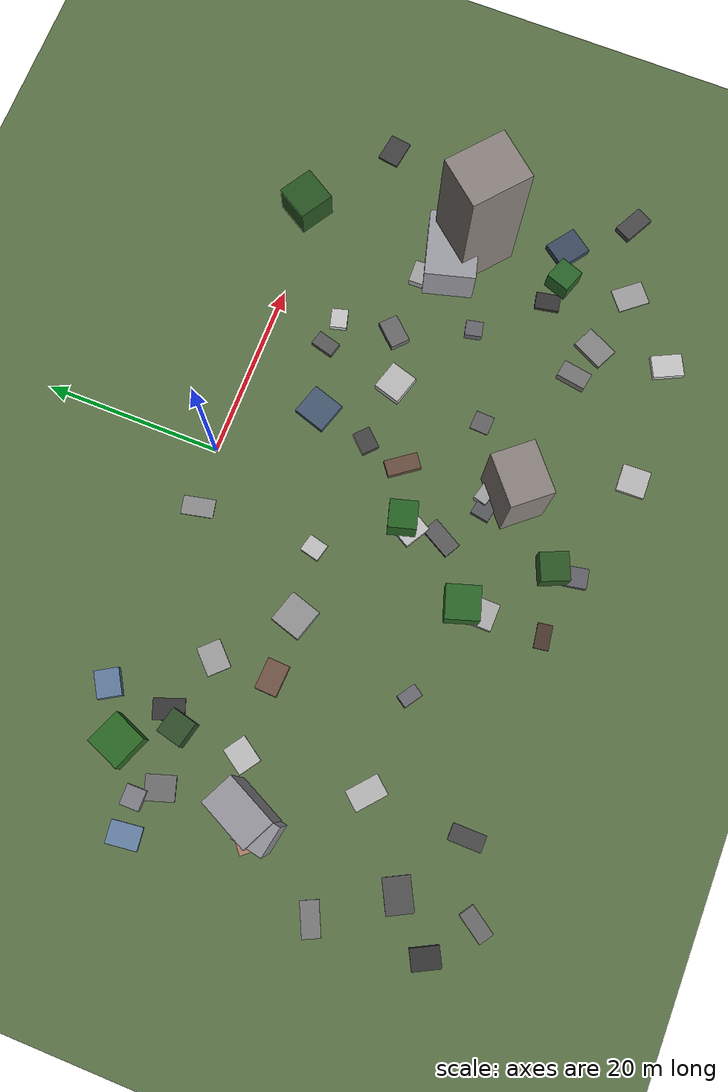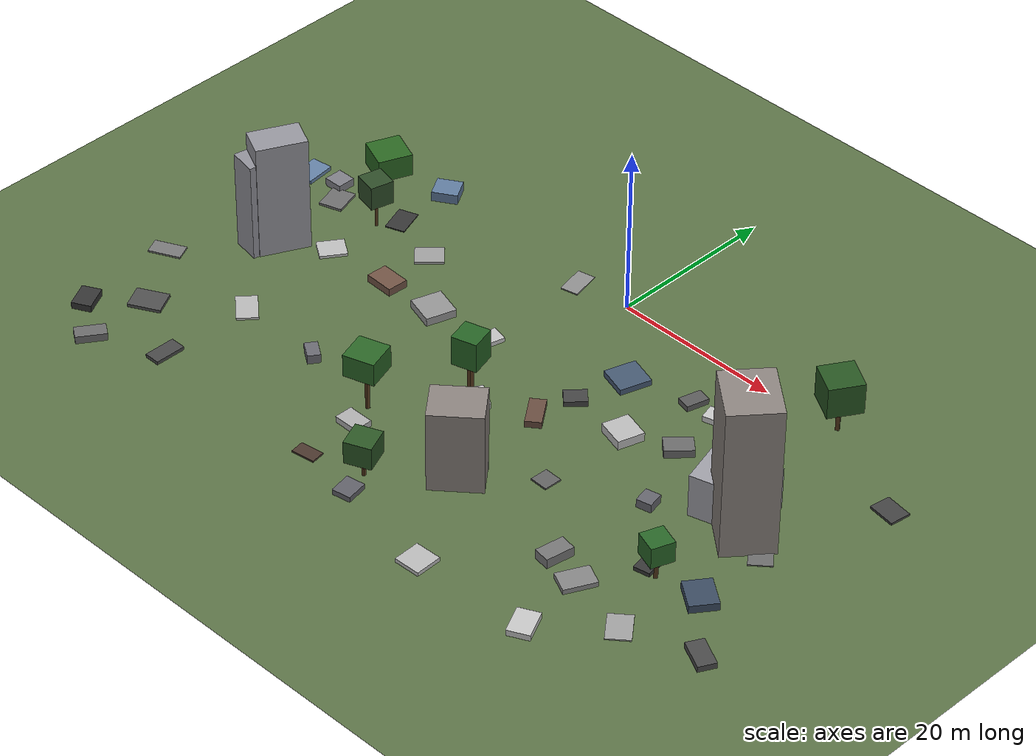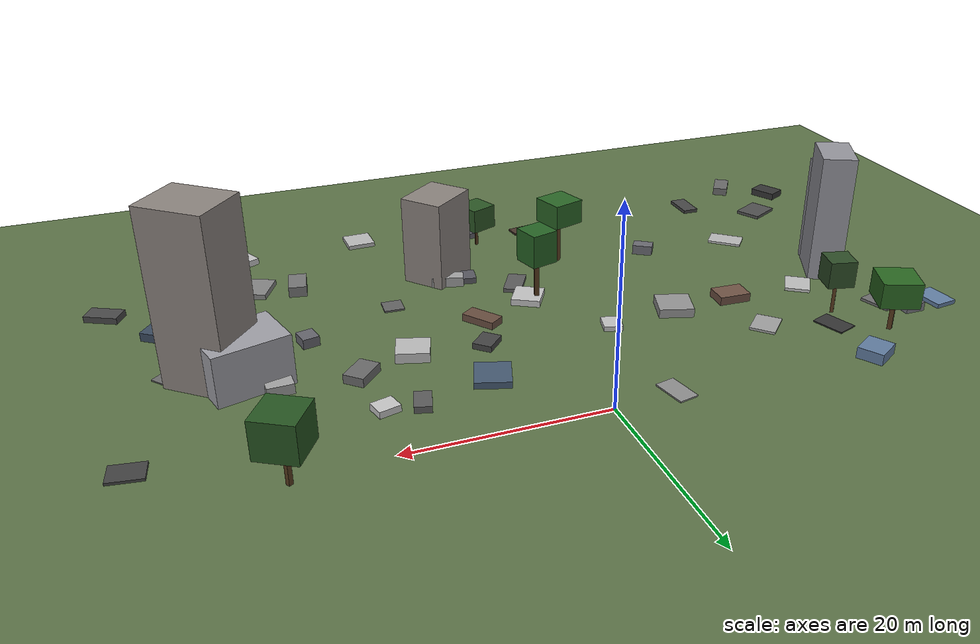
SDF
<sdf version="1.9">
 <world name="world_wind_v3_s1p5">
  <model name="ground_plane">
   <static>true</static>
   <link name="link">
    <collision name="collision">
     <geometry><plane><normal>0 0 1</normal><size>1 1</size></plane></geometry>
    </collision>
    <visual name="visual">
     <geometry><plane><normal>0 0 1</normal><size>500 500</size></plane></geometry>
     <material>
      <ambient>0.34 0.42 0.27 1</ambient>
      <diffuse>0.36 0.45 0.28 1</diffuse>
      <specular>0.05 0.06 0.04 1</specular>
     </material>
    </visual>
    <inertial>
     <mass>1</mass>
     <inertia><ixx>1</ixx><ixy>0</ixy><ixz>0</ixz><iyy>1</iyy><iyz>0</iyz><izz>1</izz></inertia>
    </inertial>
   </link>
  </model>
  <model name="tex_0">
   <static>true</static>
   <pose>-41.137 -40.159 0.403 0 0 0.478</pose>
   <link name="l">
    <visual name="v">
     <cast_shadows>false</cast_shadows>
     <geometry><box><size>2.264 3.094 0.807</size></box></geometry>
     <material>
      <ambient>0.206 0.206 0.206 1</ambient>
      <diffuse>0.206 0.206 0.206 1</diffuse>
      <specular>0.1 0.1 0.1 1</specular>
     </material>
    </visual>
   </link>
  </model>
  <model name="tex_1">
   <static>true</static>
   <pose>-41.920 -28.083 0.104 0 0 2.013</pose>
   <link name="l">
    <visual name="v">
     <cast_shadows>false</cast_shadows>
     <geometry><box><size>1.991 3.763 0.208</size></box></geometry>
     <material>
      <ambient>0.472 0.472 0.472 1</ambient>
      <diffuse>0.472 0.472 0.472 1</diffuse>
      <specular>0.1 0.1 0.1 1</specular>
     </material>
    </visual>
   </link>
  </model>
  <model name="tex_2">
   <static>true</static>
   <pose>-41.253 -7.342 0.228 0 0 0.120</pose>
   <link name="l">
    <visual name="v">
     <cast_shadows>false</cast_shadows>
     <geometry><box><size>2.489 3.451 0.456</size></box></geometry>
     <material>
      <ambient>0.395 0.508 0.649 1</ambient>
      <diffuse>0.395 0.508 0.649 1</diffuse>
      <specular>0.1 0.1 0.1 1</specular>
     </material>
    </visual>
   </link>
  </model>
  <model name="tex_7">
   <static>true</static>
   <pose>-36.256 -43.765 0.451 0 0 2.549</pose>
   <link name="l">
    <visual name="v">
     <cast_shadows>false</cast_shadows>
     <geometry><box><size>1.746 3.466 0.903</size></box></geometry>
     <material>
      <ambient>0.417 0.417 0.417 1</ambient>
      <diffuse>0.417 0.417 0.417 1</diffuse>
      <specular>0.1 0.1 0.1 1</specular>
     </material>
    </visual>
   </link>
  </model>
  <model name="tex_8">
   <static>true</static>
   <pose>-36.514 -35.487 0.184 0 0 2.053</pose>
   <link name="l">
    <visual name="v">
     <cast_shadows>false</cast_shadows>
     <geometry><box><size>2.949 3.783 0.368</size></box></geometry>
     <material>
      <ambient>0.312 0.312 0.312 1</ambient>
      <diffuse>0.312 0.312 0.312 1</diffuse>
      <specular>0.1 0.1 0.1 1</specular>
     </material>
    </visual>
   </link>
  </model>
  <model name="tex_9">
   <static>true</static>
   <pose>-36.981 -19.903 0.218 0 0 2.257</pose>
   <link name="l">
    <visual name="v">
     <cast_shadows>false</cast_shadows>
     <geometry><box><size>3.619 1.867 0.436</size></box></geometry>
     <material>
      <ambient>0.671 0.496 0.408 1</ambient>
      <diffuse>0.671 0.496 0.408 1</diffuse>
      <specular>0.1 0.1 0.1 1</specular>
     </material>
    </visual>
   </link>
  </model>
  <model name="tex_10">
   <static>true</static>
   <pose>-35.586 -8.854 0.146 0 0 1.880</pose>
   <link name="l">
    <visual name="v">
     <cast_shadows>false</cast_shadows>
     <geometry><box><size>3.256 2.732 0.292</size></box></geometry>
     <material>
      <ambient>0.431 0.431 0.431 1</ambient>
      <diffuse>0.431 0.431 0.431 1</diffuse>
      <specular>0.1 0.1 0.1 1</specular>
     </material>
    </visual>
   </link>
  </model>
  <model name="tex_15">
   <static>true</static>
   <pose>-28.677 -40.035 0.203 0 0 3.134</pose>
   <link name="l">
    <visual name="v">
     <cast_shadows>false</cast_shadows>
     <geometry><box><size>1.850 3.663 0.405</size></box></geometry>
     <material>
      <ambient>0.281 0.281 0.281 1</ambient>
      <diffuse>0.281 0.281 0.281 1</diffuse>
      <specular>0.1 0.1 0.1 1</specular>
     </material>
    </visual>
   </link>
  </model>
  <model name="tex_16">
   <static>true</static>
   <pose>-28.266 -28.858 0.131 0 0 0.863</pose>
   <link name="l">
    <visual name="v">
     <cast_shadows>false</cast_shadows>
     <geometry><box><size>2.425 3.794 0.262</size></box></geometry>
     <material>
      <ambient>0.716 0.716 0.716 1</ambient>
      <diffuse>0.716 0.716 0.716 1</diffuse>
      <specular>0.1 0.1 0.1 1</specular>
     </material>
    </visual>
   </link>
  </model>
  <model name="tex_17">
   <static>true</static>
   <pose>-29.438 -15.434 0.164 0 0 2.548</pose>
   <link name="l">
    <visual name="v">
     <cast_shadows>false</cast_shadows>
     <geometry><box><size>2.661 3.119 0.328</size></box></geometry>
     <material>
      <ambient>0.740 0.740 0.740 1</ambient>
      <diffuse>0.740 0.740 0.740 1</diffuse>
      <specular>0.1 0.1 0.1 1</specular>
     </material>
    </visual>
   </link>
  </model>
  <model name="tex_18">
   <static>true</static>
   <pose>-27.859 -6.459 0.067 0 0 1.911</pose>
   <link name="l">
    <visual name="v">
     <cast_shadows>false</cast_shadows>
     <geometry><box><size>3.435 2.317 0.134</size></box></geometry>
     <material>
      <ambient>0.209 0.209 0.209 1</ambient>
      <diffuse>0.209 0.209 0.209 1</diffuse>
      <specular>0.1 0.1 0.1 1</specular>
     </material>
    </visual>
   </link>
  </model>
  <model name="tex_19">
   <static>true</static>
   <pose>-27.711 0.384 0.590 0 0 2.111</pose>
   <link name="l">
    <visual name="v">
     <cast_shadows>false</cast_shadows>
     <geometry><box><size>2.654 2.963 1.179</size></box></geometry>
     <material>
      <ambient>0.379 0.487 0.623 1</ambient>
      <diffuse>0.379 0.487 0.623 1</diffuse>
      <specular>0.1 0.1 0.1 1</specular>
     </material>
    </visual>
   </link>
  </model>
  <model name="tex_21">
   <static>true</static>
   <pose>-20.853 -15.336 0.459 0 0 3.095</pose>
   <link name="l">
    <visual name="v">
     <cast_shadows>false</cast_shadows>
     <geometry><box><size>3.473 2.453 0.918</size></box></geometry>
     <material>
      <ambient>0.443 0.327 0.270 1</ambient>
      <diffuse>0.443 0.327 0.270 1</diffuse>
      <specular>0.1 0.1 0.1 1</specular>
     </material>
    </visual>
   </link>
  </model>
  <model name="tex_22">
   <static>true</static>
   <pose>-21.170 -8.746 0.129 0 0 2.346</pose>
   <link name="l">
    <visual name="v">
     <cast_shadows>false</cast_shadows>
     <geometry><box><size>2.642 3.262 0.258</size></box></geometry>
     <material>
      <ambient>0.623 0.623 0.623 1</ambient>
      <diffuse>0.623 0.623 0.623 1</diffuse>
      <specular>0.1 0.1 0.1 1</specular>
     </material>
    </visual>
   </link>
  </model>
  <model name="tex_24">
   <static>true</static>
   <pose>-13.934 -15.150 0.478 0 0 1.268</pose>
   <link name="l">
    <visual name="v">
     <cast_shadows>false</cast_shadows>
     <geometry><box><size>3.579 3.681 0.956</size></box></geometry>
     <material>
      <ambient>0.580 0.580 0.580 1</ambient>
      <diffuse>0.580 0.580 0.580 1</diffuse>
      <specular>0.1 0.1 0.1 1</specular>
     </material>
    </visual>
   </link>
  </model>
  <model name="tex_29">
   <static>true</static>
   <pose>-6.324 -40.404 0.102 0 0 1.721</pose>
   <link name="l">
    <visual name="v">
     <cast_shadows>false</cast_shadows>
     <geometry><box><size>1.626 2.769 0.204</size></box></geometry>
     <material>
      <ambient>0.292 0.216 0.178 1</ambient>
      <diffuse>0.292 0.216 0.178 1</diffuse>
      <specular>0.1 0.1 0.1 1</specular>
     </material>
    </visual>
   </link>
  </model>
  <model name="tex_30">
   <static>true</static>
   <pose>-6.416 -33.925 0.374 0 0 1.560</pose>
   <link name="l">
    <visual name="v">
     <cast_shadows>false</cast_shadows>
     <geometry><box><size>2.135 3.033 0.748</size></box></geometry>
     <material>
      <ambient>0.683 0.683 0.683 1</ambient>
      <diffuse>0.683 0.683 0.683 1</diffuse>
      <specular>0.1 0.1 0.1 1</specular>
     </material>
    </visual>
   </link>
  </model>
  <model name="tex_31">
   <static>true</static>
   <pose>-6.298 -14.206 0.265 0 0 1.333</pose>
   <link name="l">
    <visual name="v">
     <cast_shadows>false</cast_shadows>
     <geometry><box><size>2.227 1.981 0.530</size></box></geometry>
     <material>
      <ambient>0.757 0.757 0.757 1</ambient>
      <diffuse>0.757 0.757 0.757 1</diffuse>
      <specular>0.1 0.1 0.1 1</specular>
     </material>
    </visual>
   </link>
  </model>
  <model name="tex_32">
   <static>true</static>
   <pose>-6.615 -0.742 0.076 0 0 0.210</pose>
   <link name="l">
    <visual name="v">
     <cast_shadows>false</cast_shadows>
     <geometry><box><size>2.084 3.562 0.151</size></box></geometry>
     <material>
      <ambient>0.556 0.556 0.556 1</ambient>
      <diffuse>0.556 0.556 0.556 1</diffuse>
      <specular>0.1 0.1 0.1 1</specular>
     </material>
    </visual>
   </link>
  </model>
  <model name="tex_38">
   <static>true</static>
   <pose>-0.285 -26.573 0.219 0 0 1.063</pose>
   <link name="l">
    <visual name="v">
     <cast_shadows>false</cast_shadows>
     <geometry><box><size>3.783 1.981 0.438</size></box></geometry>
     <material>
      <ambient>0.361 0.361 0.361 1</ambient>
      <diffuse>0.361 0.361 0.361 1</diffuse>
      <specular>0.1 0.1 0.1 1</specular>
     </material>
    </visual>
   </link>
  </model>
  <model name="tex_39">
   <static>true</static>
   <pose>-0.397 -22.822 0.357 0 0 2.612</pose>
   <link name="l">
    <visual name="v">
     <cast_shadows>false</cast_shadows>
     <geometry><box><size>3.120 3.303 0.714</size></box></geometry>
     <material>
      <ambient>0.760 0.760 0.760 1</ambient>
      <diffuse>0.760 0.760 0.760 1</diffuse>
      <specular>0.1 0.1 0.1 1</specular>
     </material>
    </visual>
   </link>
  </model>
  <model name="tex_43">
   <static>true</static>
   <pose>6.593 -29.442 0.547 0 0 2.887</pose>
   <link name="l">
    <visual name="v">
     <cast_shadows>false</cast_shadows>
     <geometry><box><size>3.452 1.522 1.093</size></box></geometry>
     <material>
      <ambient>0.636 0.636 0.636 1</ambient>
      <diffuse>0.636 0.636 0.636 1</diffuse>
      <specular>0.1 0.1 0.1 1</specular>
     </material>
    </visual>
   </link>
  </model>
  <model name="tex_44">
   <static>true</static>
   <pose>5.807 -19.749 0.394 0 0 0.636</pose>
   <link name="l">
    <visual name="v">
     <cast_shadows>false</cast_shadows>
     <geometry><box><size>1.811 3.758 0.787</size></box></geometry>
     <material>
      <ambient>0.409 0.302 0.249 1</ambient>
      <diffuse>0.409 0.302 0.249 1</diffuse>
      <specular>0.1 0.1 0.1 1</specular>
     </material>
    </visual>
   </link>
  </model>
  <model name="tex_45">
   <static>true</static>
   <pose>6.906 -15.021 0.322 0 0 2.391</pose>
   <link name="l">
    <visual name="v">
     <cast_shadows>false</cast_shadows>
     <geometry><box><size>2.010 2.539 0.644</size></box></geometry>
     <material>
      <ambient>0.266 0.266 0.266 1</ambient>
      <diffuse>0.266 0.266 0.266 1</diffuse>
      <specular>0.1 0.1 0.1 1</specular>
     </material>
    </visual>
   </link>
  </model>
  <model name="tex_46">
   <static>true</static>
   <pose>8.464 -8.837 0.347 0 0 1.259</pose>
   <link name="l">
    <visual name="v">
     <cast_shadows>false</cast_shadows>
     <geometry><box><size>3.747 3.598 0.695</size></box></geometry>
     <material>
      <ambient>0.272 0.349 0.447 1</ambient>
      <diffuse>0.272 0.349 0.447 1</diffuse>
      <specular>0.1 0.1 0.1 1</specular>
     </material>
    </visual>
   </link>
  </model>
  <model name="tex_50">
   <static>true</static>
   <pose>13.343 -43.893 0.234 0 0 1.603</pose>
   <link name="l">
    <visual name="v">
     <cast_shadows>false</cast_shadows>
     <geometry><box><size>3.128 3.114 0.468</size></box></geometry>
     <material>
      <ambient>0.727 0.727 0.727 1</ambient>
      <diffuse>0.727 0.727 0.727 1</diffuse>
      <specular>0.1 0.1 0.1 1</specular>
     </material>
    </visual>
   </link>
  </model>
  <model name="tex_51">
   <static>true</static>
   <pose>13.652 -26.212 0.096 0 0 1.529</pose>
   <link name="l">
    <visual name="v">
     <cast_shadows>false</cast_shadows>
     <geometry><box><size>2.124 2.134 0.193</size></box></geometry>
     <material>
      <ambient>0.388 0.388 0.388 1</ambient>
      <diffuse>0.388 0.388 0.388 1</diffuse>
      <specular>0.1 0.1 0.1 1</specular>
     </material>
    </visual>
   </link>
  </model>
  <model name="tex_52">
   <static>true</static>
   <pose>14.297 -15.667 0.528 0 0 2.851</pose>
   <link name="l">
    <visual name="v">
     <cast_shadows>false</cast_shadows>
     <geometry><box><size>3.393 3.142 1.056</size></box></geometry>
     <material>
      <ambient>0.731 0.731 0.731 1</ambient>
      <diffuse>0.731 0.731 0.731 1</diffuse>
      <specular>0.1 0.1 0.1 1</specular>
     </material>
    </visual>
   </link>
  </model>
  <model name="tex_53">
   <static>true</static>
   <pose>15.825 -6.716 0.339 0 0 2.883</pose>
   <link name="l">
    <visual name="v">
     <cast_shadows>false</cast_shadows>
     <geometry><box><size>1.672 2.667 0.679</size></box></geometry>
     <material>
      <ambient>0.356 0.356 0.356 1</ambient>
      <diffuse>0.356 0.356 0.356 1</diffuse>
      <specular>0.1 0.1 0.1 1</specular>
     </material>
    </visual>
   </link>
  </model>
  <model name="tex_57">
   <static>true</static>
   <pose>22.333 -33.831 0.572 0 0 2.979</pose>
   <link name="l">
    <visual name="v">
     <cast_shadows>false</cast_shadows>
     <geometry><box><size>1.933 3.334 1.144</size></box></geometry>
     <material>
      <ambient>0.463 0.463 0.463 1</ambient>
      <diffuse>0.463 0.463 0.463 1</diffuse>
      <specular>0.1 0.1 0.1 1</specular>
     </material>
    </visual>
   </link>
  </model>
  <model name="tex_58">
   <static>true</static>
   <pose>19.888 -13.357 0.474 0 0 0.825</pose>
   <link name="l">
    <visual name="v">
     <cast_shadows>false</cast_shadows>
     <geometry><box><size>3.219 2.189 0.948</size></box></geometry>
     <material>
      <ambient>0.417 0.417 0.417 1</ambient>
      <diffuse>0.417 0.417 0.417 1</diffuse>
      <specular>0.1 0.1 0.1 1</specular>
     </material>
    </visual>
   </link>
  </model>
  <model name="tex_59">
   <static>true</static>
   <pose>19.192 -7.010 0.350 0 0 1.835</pose>
   <link name="l">
    <visual name="v">
     <cast_shadows>false</cast_shadows>
     <geometry><box><size>1.870 2.213 0.700</size></box></geometry>
     <material>
      <ambient>0.779 0.779 0.779 1</ambient>
      <diffuse>0.779 0.779 0.779 1</diffuse>
      <specular>0.1 0.1 0.1 1</specular>
     </material>
    </visual>
   </link>
  </model>
  <model name="tex_64">
   <static>true</static>
   <pose>27.299 -43.150 0.357 0 0 0.456</pose>
   <link name="l">
    <visual name="v">
     <cast_shadows>false</cast_shadows>
     <geometry><box><size>2.548 3.463 0.713</size></box></geometry>
     <material>
      <ambient>0.777 0.777 0.777 1</ambient>
      <diffuse>0.777 0.777 0.777 1</diffuse>
      <specular>0.1 0.1 0.1 1</specular>
     </material>
    </visual>
   </link>
  </model>
  <model name="tex_65">
   <static>true</static>
   <pose>26.384 -34.948 0.294 0 0 1.118</pose>
   <link name="l">
    <visual name="v">
     <cast_shadows>false</cast_shadows>
     <geometry><box><size>3.752 2.639 0.588</size></box></geometry>
     <material>
      <ambient>0.521 0.521 0.521 1</ambient>
      <diffuse>0.521 0.521 0.521 1</diffuse>
      <specular>0.1 0.1 0.1 1</specular>
     </material>
    </visual>
   </link>
  </model>
  <model name="tex_66">
   <static>true</static>
   <pose>29.757 -28.190 0.229 0 0 0.189</pose>
   <link name="l">
    <visual name="v">
     <cast_shadows>false</cast_shadows>
     <geometry><box><size>1.925 2.761 0.458</size></box></geometry>
     <material>
      <ambient>0.213 0.213 0.213 1</ambient>
      <diffuse>0.213 0.213 0.213 1</diffuse>
      <specular>0.1 0.1 0.1 1</specular>
     </material>
    </visual>
   </link>
  </model>
  <model name="tex_67">
   <static>true</static>
   <pose>27.542 -14.112 0.532 0 0 1.606</pose>
   <link name="l">
    <visual name="v">
     <cast_shadows>false</cast_shadows>
     <geometry><box><size>2.920 2.596 1.063</size></box></geometry>
     <material>
      <ambient>0.643 0.643 0.643 1</ambient>
      <diffuse>0.643 0.643 0.643 1</diffuse>
      <specular>0.1 0.1 0.1 1</specular>
     </material>
    </visual>
   </link>
  </model>
  <model name="tex_73">
   <static>true</static>
   <pose>33.896 -36.704 0.078 0 0 0.688</pose>
   <link name="l">
    <visual name="v">
     <cast_shadows>false</cast_shadows>
     <geometry><box><size>2.690 3.631 0.156</size></box></geometry>
     <material>
      <ambient>0.627 0.627 0.627 1</ambient>
      <diffuse>0.627 0.627 0.627 1</diffuse>
      <specular>0.1 0.1 0.1 1</specular>
     </material>
    </visual>
   </link>
  </model>
  <model name="tex_74">
   <static>true</static>
   <pose>36.597 -28.145 0.463 0 0 2.516</pose>
   <link name="l">
    <visual name="v">
     <cast_shadows>false</cast_shadows>
     <geometry><box><size>3.712 3.161 0.925</size></box></geometry>
     <material>
      <ambient>0.229 0.294 0.376 1</ambient>
      <diffuse>0.229 0.294 0.376 1</diffuse>
      <specular>0.1 0.1 0.1 1</specular>
     </material>
    </visual>
   </link>
  </model>
  <model name="tex_75">
   <static>true</static>
   <pose>36.435 -19.221 0.069 0 0 2.272</pose>
   <link name="l">
    <visual name="v">
     <cast_shadows>false</cast_shadows>
     <geometry><box><size>3.292 2.567 0.138</size></box></geometry>
     <material>
      <ambient>0.423 0.423 0.423 1</ambient>
      <diffuse>0.423 0.423 0.423 1</diffuse>
      <specular>0.1 0.1 0.1 1</specular>
     </material>
    </visual>
   </link>
  </model>
  <model name="tex_79">
   <static>true</static>
   <pose>42.257 -34.211 0.342 0 0 1.094</pose>
   <link name="l">
    <visual name="v">
     <cast_shadows>false</cast_shadows>
     <geometry><box><size>2.052 3.627 0.684</size></box></geometry>
     <material>
      <ambient>0.288 0.288 0.288 1</ambient>
      <diffuse>0.288 0.288 0.288 1</diffuse>
      <specular>0.1 0.1 0.1 1</specular>
     </material>
    </visual>
   </link>
  </model>
  <model name="tex_80">
   <static>true</static>
   <pose>41.149 -5.266 0.133 0 0 2.992</pose>
   <link name="l">
    <visual name="v">
     <cast_shadows>false</cast_shadows>
     <geometry><box><size>3.230 2.439 0.266</size></box></geometry>
     <material>
      <ambient>0.259 0.259 0.259 1</ambient>
      <diffuse>0.259 0.259 0.259 1</diffuse>
      <specular>0.1 0.1 0.1 1</specular>
     </material>
    </visual>
   </link>
  </model>
  <model name="tree_0">
   <static>true</static>
   <pose>-7.314 -31.046 0 0 0 1.378</pose>
   <link name="l">
    <visual name="trunk">
     <cast_shadows>false</cast_shadows>
     <pose>0 0 2.483 0 0 0</pose>
     <geometry><box><size>0.370 0.370 4.966</size></box></geometry>
     <material>
      <ambient>0.30 0.20 0.10 1</ambient>
      <diffuse>0.33 0.22 0.11 1</diffuse>
      <specular>0.02 0.02 0.02 1</specular>
     </material>
    </visual>
    <visual name="canopy">
     <cast_shadows>false</cast_shadows>
     <pose>0 0 6.190 0 0 0.5</pose>
     <geometry><box><size>3.642 3.642 2.720</size></box></geometry>
     <material>
      <ambient>0.169 0.402 0.154 1</ambient>
      <diffuse>0.169 0.402 0.154 1</diffuse>
      <specular>0.03 0.05 0.03 1</specular>
     </material>
    </visual>
   </link>
  </model>
  <model name="tree_6">
   <static>true</static>
   <pose>0.157 -38.644 0 0 0 1.470</pose>
   <link name="l">
    <visual name="trunk">
     <cast_shadows>false</cast_shadows>
     <pose>0 0 1.232 0 0 0</pose>
     <geometry><box><size>0.318 0.318 2.464</size></box></geometry>
     <material>
      <ambient>0.30 0.20 0.10 1</ambient>
      <diffuse>0.33 0.22 0.11 1</diffuse>
      <specular>0.02 0.02 0.02 1</specular>
     </material>
    </visual>
    <visual name="canopy">
     <cast_shadows>false</cast_shadows>
     <pose>0 0 3.683 0 0 0.5</pose>
     <geometry><box><size>3.114 3.114 2.708</size></box></geometry>
     <material>
      <ambient>0.174 0.340 0.148 1</ambient>
      <diffuse>0.174 0.340 0.148 1</diffuse>
      <specular>0.03 0.05 0.03 1</specular>
     </material>
    </visual>
   </link>
  </model>
  <model name="tree_9">
   <static>true</static>
   <pose>-29.286 -8.887 0 0 0 0.833</pose>
   <link name="l">
    <visual name="trunk">
     <cast_shadows>false</cast_shadows>
     <pose>0 0 1.785 0 0 0</pose>
     <geometry><box><size>0.350 0.350 3.570</size></box></geometry>
     <material>
      <ambient>0.30 0.20 0.10 1</ambient>
      <diffuse>0.33 0.22 0.11 1</diffuse>
      <specular>0.02 0.02 0.02 1</specular>
     </material>
    </visual>
    <visual name="canopy">
     <cast_shadows>false</cast_shadows>
     <pose>0 0 4.855 0 0 0.5</pose>
     <geometry><box><size>2.804 2.804 2.857</size></box></geometry>
     <material>
      <ambient>0.184 0.303 0.160 1</ambient>
      <diffuse>0.184 0.303 0.160 1</diffuse>
      <specular>0.03 0.05 0.03 1</specular>
     </material>
    </visual>
   </link>
  </model>
  <model name="tree_10">
   <static>true</static>
   <pose>28.977 0.703 0 0 0 0.527</pose>
   <link name="l">
    <visual name="trunk">
     <cast_shadows>false</cast_shadows>
     <pose>0 0 1.794 0 0 0</pose>
     <geometry><box><size>0.429 0.429 3.588</size></box></geometry>
     <material>
      <ambient>0.30 0.20 0.10 1</ambient>
      <diffuse>0.33 0.22 0.11 1</diffuse>
      <specular>0.02 0.02 0.02 1</specular>
     </material>
    </visual>
    <visual name="canopy">
     <cast_shadows>false</cast_shadows>
     <pose>0 0 5.263 0 0 0.5</pose>
     <geometry><box><size>4.036 4.036 3.722</size></box></geometry>
     <material>
      <ambient>0.156 0.336 0.134 1</ambient>
      <diffuse>0.156 0.336 0.134 1</diffuse>
      <specular>0.03 0.05 0.03 1</specular>
     </material>
    </visual>
   </link>
  </model>
  <model name="tree_11">
   <static>true</static>
   <pose>-1.165 -22.201 0 0 0 1.346</pose>
   <link name="l">
    <visual name="trunk">
     <cast_shadows>false</cast_shadows>
     <pose>0 0 2.462 0 0 0</pose>
     <geometry><box><size>0.499 0.499 4.924</size></box></geometry>
     <material>
      <ambient>0.30 0.20 0.10 1</ambient>
      <diffuse>0.33 0.22 0.11 1</diffuse>
      <specular>0.02 0.02 0.02 1</specular>
     </material>
    </visual>
    <visual name="canopy">
     <cast_shadows>false</cast_shadows>
     <pose>0 0 6.524 0 0 0.5</pose>
     <geometry><box><size>2.988 2.988 3.556</size></box></geometry>
     <material>
      <ambient>0.153 0.392 0.147 1</ambient>
      <diffuse>0.153 0.392 0.147 1</diffuse>
      <specular>0.03 0.05 0.03 1</specular>
     </material>
    </visual>
   </link>
  </model>
  <model name="tree_12">
   <static>true</static>
   <pose>-32.628 -3.739 0 0 0 0.683</pose>
   <link name="l">
    <visual name="trunk">
     <cast_shadows>false</cast_shadows>
     <pose>0 0 1.673 0 0 0</pose>
     <geometry><box><size>0.453 0.453 3.346</size></box></geometry>
     <material>
      <ambient>0.30 0.20 0.10 1</ambient>
      <diffuse>0.33 0.22 0.11 1</diffuse>
      <specular>0.02 0.02 0.02 1</specular>
     </material>
    </visual>
    <visual name="canopy">
     <cast_shadows>false</cast_shadows>
     <pose>0 0 4.560 0 0 0.5</pose>
     <geometry><box><size>3.993 3.993 2.699</size></box></geometry>
     <material>
      <ambient>0.169 0.406 0.135 1</ambient>
      <diffuse>0.169 0.406 0.135 1</diffuse>
      <specular>0.03 0.05 0.03 1</specular>
     </material>
    </visual>
   </link>
  </model>
  <model name="tree_13">
   <static>true</static>
   <pose>31.330 -28.875 0 0 0 0.729</pose>
   <link name="l">
    <visual name="trunk">
     <cast_shadows>false</cast_shadows>
     <pose>0 0 1.363 0 0 0</pose>
     <geometry><box><size>0.436 0.436 2.727</size></box></geometry>
     <material>
      <ambient>0.30 0.20 0.10 1</ambient>
      <diffuse>0.33 0.22 0.11 1</diffuse>
      <specular>0.02 0.02 0.02 1</specular>
     </material>
    </visual>
    <visual name="canopy">
     <cast_shadows>false</cast_shadows>
     <pose>0 0 3.868 0 0 0.5</pose>
     <geometry><box><size>2.697 2.697 2.536</size></box></geometry>
     <material>
      <ambient>0.161 0.399 0.156 1</ambient>
      <diffuse>0.161 0.399 0.156 1</diffuse>
      <specular>0.03 0.05 0.03 1</specular>
     </material>
    </visual>
   </link>
  </model>
  <model name="bldg_0">
   <static>true</static>
   <pose>-35.548 -20.456 5.954 0 0 1.385</pose>
   <link name="l">
    <visual name="v">
     <cast_shadows>false</cast_shadows>
     <geometry><box><size>3.444 3.289 11.909</size></box></geometry>
     <material>
      <ambient>0.569 0.569 0.599 1</ambient>
      <diffuse>0.569 0.569 0.599 1</diffuse>
      <specular>0.14 0.14 0.16 1</specular>
     </material>
    </visual>
   </link>
  </model>
  <model name="bldg_1">
   <static>true</static>
   <pose>32.919 -17.933 9.035 0 0 0.875</pose>
   <link name="l">
    <visual name="v">
     <cast_shadows>false</cast_shadows>
     <geometry><box><size>5.891 6.980 18.070</size></box></geometry>
     <material>
      <ambient>0.549 0.519 0.499 1</ambient>
      <diffuse>0.549 0.519 0.499 1</diffuse>
      <specular>0.14 0.14 0.16 1</specular>
     </material>
    </visual>
   </link>
  </model>
  <model name="bldg_2">
   <static>true</static>
   <pose>30.195 -16.216 2.591 0 0 0.267</pose>
   <link name="l">
    <visual name="v">
     <cast_shadows>false</cast_shadows>
     <geometry><box><size>7.665 5.673 5.182</size></box></geometry>
     <material>
      <ambient>0.623 0.623 0.653 1</ambient>
      <diffuse>0.623 0.623 0.653 1</diffuse>
      <specular>0.14 0.14 0.16 1</specular>
     </material>
    </visual>
   </link>
  </model>
  <model name="bldg_7">
   <static>true</static>
   <pose>6.892 -32.053 4.873 0 0 0.702</pose>
   <link name="l">
    <visual name="v">
     <cast_shadows>false</cast_shadows>
     <geometry><box><size>5.950 4.868 9.745</size></box></geometry>
     <material>
      <ambient>0.544 0.514 0.494 1</ambient>
      <diffuse>0.544 0.514 0.494 1</diffuse>
      <specular>0.14 0.14 0.16 1</specular>
     </material>
    </visual>
   </link>
  </model>
  <model name="bldg_10">
   <static>true</static>
   <pose>-34.384 -18.355 7.007 0 0 1.117</pose>
   <link name="l">
    <visual name="v">
     <cast_shadows>false</cast_shadows>
     <geometry><box><size>5.846 3.637 14.015</size></box></geometry>
     <material>
      <ambient>0.586 0.586 0.616 1</ambient>
      <diffuse>0.586 0.586 0.616 1</diffuse>
      <specular>0.14 0.14 0.16 1</specular>
     </material>
    </visual>
   </link>
  </model>
  <model name="rock_2">
   <static>true</static>
   <pose>-37.441 -6.737 0.479 0 0 0.005</pose>
   <link name="l">
    <visual name="v">
     <cast_shadows>false</cast_shadows>
     <geometry><box><size>2.211 2.138 0.959</size></box></geometry>
     <material>
      <ambient>0.495 0.495 0.525 1</ambient>
      <diffuse>0.495 0.495 0.525 1</diffuse>
      <specular>0.08 0.08 0.08 1</specular>
     </material>
    </visual>
   </link>
  </model>
  <model name="rock_3">
   <static>true</static>
   <pose>23.451 -21.586 0.515 0 0 0.216</pose>
   <link name="l">
    <visual name="v">
     <cast_shadows>false</cast_shadows>
     <geometry><box><size>1.757 1.926 1.030</size></box></geometry>
     <material>
      <ambient>0.396 0.396 0.426 1</ambient>
      <diffuse>0.396 0.396 0.426 1</diffuse>
      <specular>0.08 0.08 0.08 1</specular>
     </material>
    </visual>
   </link>
  </model>
  <model name="rock_4">
   <static>true</static>
   <pose>4.615 -29.800 0.328 0 0 1.403</pose>
   <link name="l">
    <visual name="v">
     <cast_shadows>false</cast_shadows>
     <geometry><box><size>2.121 2.586 0.656</size></box></geometry>
     <material>
      <ambient>0.348 0.348 0.378 1</ambient>
      <diffuse>0.348 0.348 0.378 1</diffuse>
      <specular>0.08 0.08 0.08 1</specular>
     </material>
    </visual>
   </link>
  </model>
  <model name="rock_5">
   <static>true</static>
   <pose>-17.413 -29.434 0.546 0 0 2.554</pose>
   <link name="l">
    <visual name="v">
     <cast_shadows>false</cast_shadows>
     <geometry><box><size>2.241 1.464 1.092</size></box></geometry>
     <material>
      <ambient>0.415 0.415 0.445 1</ambient>
      <diffuse>0.415 0.415 0.445 1</diffuse>
      <specular>0.08 0.08 0.08 1</specular>
     </material>
    </visual>
   </link>
  </model>
  <model name="rock_6">
   <static>true</static>
   <pose>0.923 -41.514 0.318 0 0 1.748</pose>
   <link name="l">
    <visual name="v">
     <cast_shadows>false</cast_shadows>
     <geometry><box><size>2.552 2.218 0.635</size></box></geometry>
     <material>
      <ambient>0.377 0.377 0.407 1</ambient>
      <diffuse>0.377 0.377 0.407 1</diffuse>
      <specular>0.08 0.08 0.08 1</specular>
     </material>
    </visual>
   </link>
  </model>
  <model name="film_cam">
   <static>true</static>
   <pose>4.000 -34.000 20.000 0 0.3311 1.5708</pose>
   <link name="l">
    <sensor name="film" type="camera">
     <camera>
      <horizontal_fov>1.20</horizontal_fov>
      <image><width>1280</width><height>720</height></image>
      <clip><near>0.1</near><far>3000</far></clip>
     </camera>
     <always_on>1</always_on>
     <update_rate>30</update_rate>
     <visualize>false</visualize>
    </sensor>
   </link>
  </model>
 </world>
</sdf>
